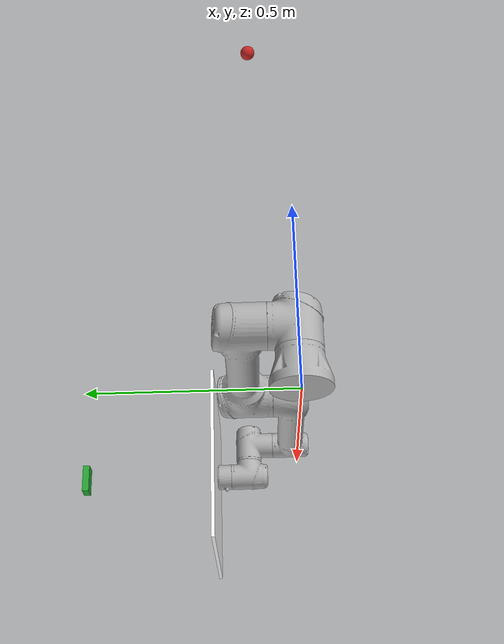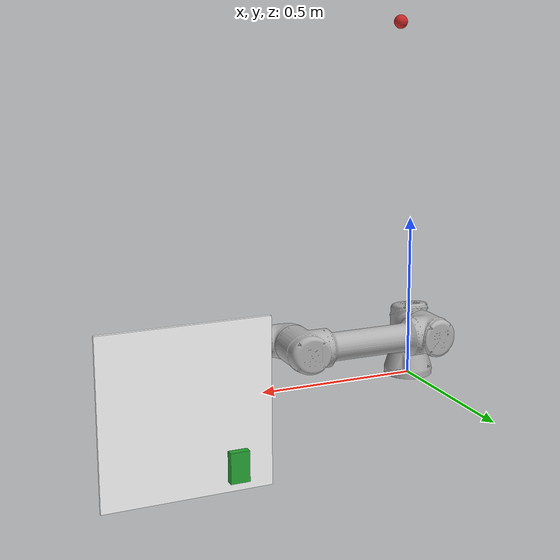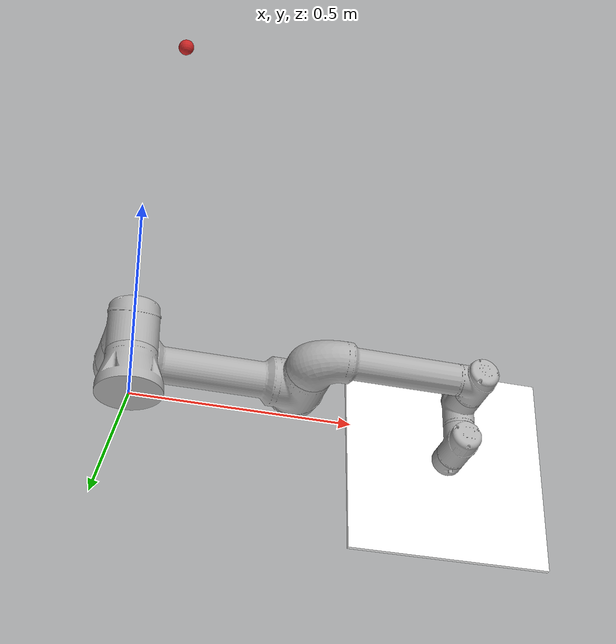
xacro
<?xml version="1.0"?>
<robot name="ur5e"
       xmlns:xacro="http://www.ros.org/wiki/xacro">
  <xacro:include filename="$(find ur_e_description)/urdf/ur5e_joint_limited_robot.urdf.xacro" />

  <xacro:property name="plate_length" value="0.5"/>
  <xacro:property name="plate_width" value="0.5"/>
  <xacro:property name="plate_thickness" value="0.01"/>
  <xacro:property name="ball_radius" value="0.02"/>

  <xacro:include filename="$(find praktikum_gazebo)/urdf/common.xacro" />
  <xacro:include filename="$(find praktikum_gazebo)/urdf/plate.urdf.xacro" />
  <xacro:plate parent="tool0" length="${plate_length}"
               width="${plate_width}" thickness="${plate_thickness}">
    <origin xyz="0 0 0" rpy="0 0 0" />
  </xacro:plate>

  <xacro:include filename="$(find praktikum_gazebo)/urdf/ball.urdf.xacro" />
  <xacro:ball parent="world" radius="${ball_radius}">
    <origin xyz="0.1 0.1 1.1" rpy="0 0 0" />
  </xacro:ball>

  <xacro:include filename="$(find praktikum_gazebo)/urdf/camera.urdf.xacro" />
  <xacro:camera_sensor parent="plate_link">
    <origin xyz="0 0 0.4" rpy="0 1.57 0" />
  </xacro:camera_sensor>
</robot>

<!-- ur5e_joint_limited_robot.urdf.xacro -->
<robot xmlns:xacro="http://ros.org/wiki/xacro"
       name="ur5e" >

  <xacro:arg name="transmission_hw_interface" default="hardware_interface/PositionJointInterface"/>

  <!-- common stuff -->
  <xacro:include filename="$(find ur_e_description)/urdf/common.gazebo.xacro" />

  <!-- ur5e -->
  <xacro:include filename="$(find ur_e_description)/urdf/ur5e.urdf.xacro" />

  <!-- arm -->
  <xacro:ur5e_robot prefix="" joint_limited="true"
    shoulder_pan_lower_limit="${-pi}" shoulder_pan_upper_limit="${pi}"
    shoulder_lift_lower_limit="${-pi}" shoulder_lift_upper_limit="${pi}"
    elbow_joint_lower_limit="${-pi}" elbow_joint_upper_limit="${pi}"
    wrist_1_lower_limit="${-pi}" wrist_1_upper_limit="${pi}"
    wrist_2_lower_limit="${-pi}" wrist_2_upper_limit="${pi}"
    wrist_3_lower_limit="${-pi}" wrist_3_upper_limit="${pi}"
    transmission_hw_interface="$(arg transmission_hw_interface)"
  />

  <link name="world" />

  <joint name="world_joint" type="fixed">
    <parent link="world" />
    <child link = "base_link" />
    <origin xyz="0.0 0.0 0.0" rpy="0.0 0.0 0.0" />
  </joint>

</robot>

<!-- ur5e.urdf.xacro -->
<robot xmlns:xacro="http://ros.org/wiki/xacro">

  <xacro:include filename="$(find ur_e_description)/urdf/ur.transmission.xacro" />
  <xacro:include filename="$(find ur_e_description)/urdf/ur.gazebo.xacro" />

  <xacro:macro name="cylinder_inertial" params="radius length mass *origin">
    <inertial>
      <mass value="${mass}" />
      <xacro:insert_block name="origin" />
      <inertia ixx="${0.0833333 * mass * (3 * radius * radius + length * length)}" ixy="0.0" ixz="0.0"
        iyy="${0.0833333 * mass * (3 * radius * radius + length * length)}" iyz="0.0"
        izz="${0.5 * mass * radius * radius}" />
    </inertial>
  </xacro:macro>

  <xacro:macro name="ur5e_robot" params="prefix joint_limited
    shoulder_pan_lower_limit:=${-pi}    shoulder_pan_upper_limit:=${pi}
    shoulder_lift_lower_limit:=${-pi}    shoulder_lift_upper_limit:=${pi}
    elbow_joint_lower_limit:=${-pi}    elbow_joint_upper_limit:=${pi}
    wrist_1_lower_limit:=${-pi}    wrist_1_upper_limit:=${pi}
    wrist_2_lower_limit:=${-pi}    wrist_2_upper_limit:=${pi}
    wrist_3_lower_limit:=${-pi}    wrist_3_upper_limit:=${pi}
    transmission_hw_interface:=hardware_interface/PositionJointInterface
    safety_limits:=false safety_pos_margin:=0.15
    safety_k_position:=20">

    <!-- Inertia parameters -->
    <xacro:property name="base_mass" value="4.0" />  <!-- This mass might be incorrect -->
    <xacro:property name="shoulder_mass" value="3.7000" />
    <xacro:property name="upper_arm_mass" value="8.3930" />
    <xacro:property name="forearm_mass" value="2.2750" />
    <xacro:property name="wrist_1_mass" value="1.2190" />
    <xacro:property name="wrist_2_mass" value="1.2190" />
    <xacro:property name="wrist_3_mass" value="0.1879" />

    <xacro:property name="shoulder_cog" value="0.0 0.00193 -0.02561" />
    <xacro:property name="upper_arm_cog" value="0.0 -0.024201 0.2125" />
    <xacro:property name="forearm_cog" value="0.0 0.0265 0.11993" />
    <xacro:property name="wrist_1_cog" value="0.0 0.110949 0.01634" />
    <xacro:property name="wrist_2_cog" value="0.0 0.0018 0.11099" />
    <xacro:property name="wrist_3_cog" value="0.0 0.001159 0.0" />

    <!-- Kinematic model -->
    <!-- Properties from urcontrol.conf -->
    <xacro:property name="d1" value="0.163" />
    <xacro:property name="a2" value="-0.425" />
    <xacro:property name="a3" value="-0.392" />
    <xacro:property name="d4" value="0.127" />
    <xacro:property name="d5" value="0.100" />
    <xacro:property name="d6" value="0.100" />

    <!-- Arbitrary offsets for shoulder/elbow joints -->
    <xacro:property name="shoulder_offset" value="0.138" />
    <xacro:property name="elbow_offset" value="-0.131" />

    <!-- link lengths used in model -->
    <xacro:property name="shoulder_height" value="${d1}" />
    <xacro:property name="upper_arm_length" value="${-a2}" />
    <xacro:property name="forearm_length" value="${-a3}" />
    <xacro:property name="wrist_1_length" value="${d4}" />
    <xacro:property name="wrist_2_length" value="${d5}" />
    <xacro:property name="wrist_3_length" value="${d6}" />
    <!--property name="shoulder_height" value="0.089159" /-->
    <!--property name="shoulder_offset" value="0.13585" /-->  <!-- shoulder_offset - elbow_offset + wrist_1_length = 0.10915 -->
    <!--property name="upper_arm_length" value="0.42500" /-->
    <!--property name="elbow_offset" value="0.1197" /-->       <!-- CAD measured -->
    <!--property name="forearm_length" value="0.39225" /-->
    <!--property name="wrist_1_length" value="0.093" /-->     <!-- CAD measured -->
    <!--property name="wrist_2_length" value="0.09465" /-->   <!-- In CAD this distance is 0.930, but in the spec it is 0.09465 -->
    <!--property name="wrist_3_length" value="0.0823" /-->

    <xacro:property name="shoulder_radius" value="0.060" />   <!-- manually measured -->
    <xacro:property name="upper_arm_radius" value="0.054" />  <!-- manually measured -->
    <xacro:property name="elbow_radius" value="0.060" />      <!-- manually measured -->
    <xacro:property name="forearm_radius" value="0.040" />    <!-- manually measured -->
    <xacro:property name="wrist_radius" value="0.045" />      <!-- manually measured -->

    <link name="${prefix}base_link" >
      <visual>
        <geometry>
          <mesh filename="package://ur_e_description/meshes/ur5e/visual/base.dae" />
        </geometry>
        <material name="LightGrey">
          <color rgba="0.7 0.7 0.7 1.0"/>
        </material>
      </visual>
      <collision>
        <geometry>
          <mesh filename="package://ur_e_description/meshes/ur5e/collision/base.stl" />
        </geometry>
      </collision>
      <xacro:cylinder_inertial radius="0.06" length="0.05" mass="${base_mass}">
        <origin xyz="0.0 0.0 0.0" rpy="0 0 0" />
      </xacro:cylinder_inertial>
    </link>

    <joint name="${prefix}shoulder_pan_joint" type="revolute">
      <parent link="${prefix}base_link" />
      <child link = "${prefix}shoulder_link" />
      <origin xyz="0.0 0.0 ${shoulder_height}" rpy="0.0 0.0 0.0" />
      <axis xyz="0 0 1" />
      <xacro:unless value="${joint_limited}">
        <limit lower="${-2.0 * pi}" upper="${2.0 * pi}" effort="150.0" velocity="3.14"/>
        <xacro:if value="${safety_limits}">
          <safety_controller soft_lower_limit="${-2.0 * pi + safety_pos_margin}" soft_upper_limit="${2.0 * pi - safety_pos_margin}" k_position="${safety_k_position}" k_velocity="0.0"/>
        </xacro:if>
      </xacro:unless>
      <xacro:if value="${joint_limited}">
        <limit lower="${shoulder_pan_lower_limit}" upper="${shoulder_pan_upper_limit}" effort="150.0" velocity="3.14"/>
        <xacro:if value="${safety_limits}">
          <safety_controller soft_lower_limit="${shoulder_pan_lower_limit + safety_pos_margin}" soft_upper_limit="${shoulder_pan_upper_limit - safety_pos_margin}" k_position="${safety_k_position}" k_velocity="0.0"/>
        </xacro:if>
      </xacro:if>
      <dynamics damping="0.0" friction="0.0"/>
    </joint>

    <link name="${prefix}shoulder_link">
      <visual>
        <geometry>
          <mesh filename="package://ur_e_description/meshes/ur5e/visual/shoulder.dae" />
        </geometry>
        <material name="LightGrey">
          <color rgba="0.7 0.7 0.7 1.0"/>
        </material>
      </visual>
      <collision>
        <geometry>
          <mesh filename="package://ur_e_description/meshes/ur5e/collision/shoulder.stl" />
        </geometry>
      </collision>
      <xacro:cylinder_inertial radius="0.06" length="0.15" mass="${shoulder_mass}">
        <origin xyz="0.0 0.0 0.0" rpy="0 0 0" />
      </xacro:cylinder_inertial>
    </link>

    <joint name="${prefix}shoulder_lift_joint" type="revolute">
      <parent link="${prefix}shoulder_link" />
      <child link = "${prefix}upper_arm_link" />
      <origin xyz="0.0 ${shoulder_offset} 0.0" rpy="0.0 ${pi / 2.0} 0.0" />
      <axis xyz="0 1 0" />
      <xacro:unless value="${joint_limited}">
        <limit lower="${-2.0 * pi}" upper="${2.0 * pi}" effort="150.0" velocity="3.14"/>
        <xacro:if value="${safety_limits}">
          <safety_controller soft_lower_limit="${-2.0 * pi + safety_pos_margin}" soft_upper_limit="${2.0 * pi - safety_pos_margin}" k_position="${safety_k_position}" k_velocity="0.0"/>
        </xacro:if>
      </xacro:unless>
      <xacro:if value="${joint_limited}">
        <limit lower="${shoulder_lift_lower_limit}" upper="${shoulder_lift_upper_limit}" effort="150.0" velocity="3.14"/>
        <xacro:if value="${safety_limits}">
          <safety_controller soft_lower_limit="${shoulder_lift_lower_limit + safety_pos_margin}" soft_upper_limit="${shoulder_lift_upper_limit - safety_pos_margin}" k_position="${safety_k_position}" k_velocity="0.0"/>
        </xacro:if>
      </xacro:if>
      <dynamics damping="0.0" friction="0.0"/>
    </joint>

    <link name="${prefix}upper_arm_link">
      <visual>
        <geometry>
          <mesh filename="package://ur_e_description/meshes/ur5e/visual/upperarm.dae" />
        </geometry>
        <material name="LightGrey">
          <color rgba="0.7 0.7 0.7 1.0"/>
        </material>
      </visual>
      <collision>
        <geometry>
          <mesh filename="package://ur_e_description/meshes/ur5e/collision/upperarm.stl" />
        </geometry>
      </collision>
      <xacro:cylinder_inertial radius="0.06" length="${upper_arm_length}" mass="${upper_arm_mass}">
        <origin xyz="0.0 0.0 ${upper_arm_length/2}" rpy="0 0 0" />
      </xacro:cylinder_inertial>
    </link>

    <joint name="${prefix}elbow_joint" type="revolute">
      <parent link="${prefix}upper_arm_link" />
      <child link = "${prefix}forearm_link" />
      <origin xyz="0.0 ${elbow_offset} ${upper_arm_length}" rpy="0.0 0.0 0.0" />
      <axis xyz="0 1 0" />
      <xacro:unless value="${joint_limited}">
        <limit lower="${-pi}" upper="${pi}" effort="150.0" velocity="3.14"/>
        <xacro:if value="${safety_limits}">
          <safety_controller soft_lower_limit="${-2.0 * pi + safety_pos_margin}" soft_upper_limit="${2.0 * pi - safety_pos_margin}" k_position="${safety_k_position}" k_velocity="0.0"/>
        </xacro:if>
      </xacro:unless>
      <xacro:if value="${joint_limited}">
        <limit lower="${elbow_joint_lower_limit}" upper="${elbow_joint_upper_limit}" effort="150.0" velocity="3.14"/>
        <xacro:if value="${safety_limits}">
          <safety_controller soft_lower_limit="${elbow_joint_lower_limit + safety_pos_margin}" soft_upper_limit="${elbow_joint_upper_limit - safety_pos_margin}" k_position="${safety_k_position}" k_velocity="0.0"/>
        </xacro:if>
      </xacro:if>
      <dynamics damping="0.0" friction="0.0"/>
    </joint>

    <link name="${prefix}forearm_link">
      <visual>
        <geometry>
          <mesh filename="package://ur_e_description/meshes/ur5e/visual/forearm.dae" />
        </geometry>
        <material name="LightGrey">
          <color rgba="0.7 0.7 0.7 1.0"/>
        </material>
      </visual>
      <collision>
        <geometry>
          <mesh filename="package://ur_e_description/meshes/ur5e/collision/forearm.stl" />
        </geometry>
      </collision>
      <xacro:cylinder_inertial radius="0.06" length="${forearm_length}" mass="${forearm_mass}">
        <origin xyz="0.0 0.0 ${forearm_length/2}" rpy="0 0 0" />
      </xacro:cylinder_inertial>
    </link>

    <joint name="${prefix}wrist_1_joint" type="revolute">
      <parent link="${prefix}forearm_link" />
      <child link = "${prefix}wrist_1_link" />
      <origin xyz="0.0 0.0 ${forearm_length}" rpy="0.0 ${pi / 2.0} 0.0" />
      <axis xyz="0 1 0" />
      <xacro:unless value="${joint_limited}">
        <limit lower="${-2.0 * pi}" upper="${2.0 * pi}" effort="28.0" velocity="6.28"/>
        <xacro:if value="${safety_limits}">
          <safety_controller soft_lower_limit="${-2.0 * pi + safety_pos_margin}" soft_upper_limit="${2.0 * pi - safety_pos_margin}" k_position="${safety_k_position}" k_velocity="0.0"/>
        </xacro:if>
      </xacro:unless>
      <xacro:if value="${joint_limited}">
        <limit lower="${wrist_1_lower_limit}" upper="${wrist_1_upper_limit}" effort="28.0" velocity="6.28"/>
        <xacro:if value="${safety_limits}">
          <safety_controller soft_lower_limit="${wrist_1_lower_limit + safety_pos_margin}" soft_upper_limit="${wrist_1_upper_limit - safety_pos_margin}" k_position="${safety_k_position}" k_velocity="0.0"/>
        </xacro:if>
      </xacro:if>
      <dynamics damping="0.0" friction="0.0"/>
    </joint>

    <link name="${prefix}wrist_1_link">
      <visual>
        <geometry>
          <mesh filename="package://ur_e_description/meshes/ur5e/visual/wrist1.dae" />
        </geometry>
        <material name="LightGrey">
          <color rgba="0.7 0.7 0.7 1.0"/>
        </material>
      </visual>
      <collision>
        <geometry>
          <mesh filename="package://ur_e_description/meshes/ur5e/collision/wrist1.stl" />
        </geometry>
      </collision>
      <xacro:cylinder_inertial radius="0.06" length="0.12" mass="${wrist_1_mass}">
        <origin xyz="0.0 ${wrist_1_length} 0.0" rpy="0 0 0" />
      </xacro:cylinder_inertial>
    </link>

    <joint name="${prefix}wrist_2_joint" type="revolute">
      <parent link="${prefix}wrist_1_link" />
      <child link = "${prefix}wrist_2_link" />
      <origin xyz="0.0 ${wrist_1_length} 0.0" rpy="0.0 0.0 0.0" />
      <axis xyz="0 0 1" />
      <xacro:unless value="${joint_limited}">
        <limit lower="${-2.0 * pi}" upper="${2.0 * pi}" effort="28.0" velocity="6.28"/>
        <xacro:if value="${safety_limits}">
          <safety_controller soft_lower_limit="${-2.0 * pi + safety_pos_margin}" soft_upper_limit="${2.0 * pi - safety_pos_margin}" k_position="${safety_k_position}" k_velocity="0.0"/>
        </xacro:if>
      </xacro:unless>
      <xacro:if value="${joint_limited}">
        <limit lower="${wrist_2_lower_limit}" upper="${wrist_2_upper_limit}" effort="28.0" velocity="6.28"/>
        <xacro:if value="${safety_limits}">
          <safety_controller soft_lower_limit="${wrist_2_lower_limit + safety_pos_margin}" soft_upper_limit="${wrist_2_upper_limit - safety_pos_margin}" k_position="${safety_k_position}" k_velocity="0.0"/>
        </xacro:if>
      </xacro:if>
      <dynamics damping="0.0" friction="0.0"/>
    </joint>

    <link name="${prefix}wrist_2_link">
      <visual>
        <geometry>
          <mesh filename="package://ur_e_description/meshes/ur5e/visual/wrist2.dae" />
        </geometry>
        <material name="LightGrey">
          <color rgba="0.7 0.7 0.7 1.0"/>
        </material>
      </visual>
      <collision>
        <geometry>
          <mesh filename="package://ur_e_description/meshes/ur5e/collision/wrist2.stl" />
        </geometry>
      </collision>
      <xacro:cylinder_inertial radius="0.06" length="0.12" mass="${wrist_2_mass}">
        <origin xyz="0.0 0.0 ${wrist_2_length}" rpy="0 0 0" />
      </xacro:cylinder_inertial>
    </link>

    <joint name="${prefix}wrist_3_joint" type="revolute">
      <parent link="${prefix}wrist_2_link" />
      <child link = "${prefix}wrist_3_link" />
      <origin xyz="0.0 0.0 ${wrist_2_length}" rpy="0.0 0.0 0.0" />
      <axis xyz="0 1 0" />
      <xacro:unless value="${joint_limited}">
        <limit lower="${-2.0 * pi}" upper="${2.0 * pi}" effort="28.0" velocity="6.28"/>
        <xacro:if value="${safety_limits}">
          <safety_controller soft_lower_limit="${-2.0 * pi + safety_pos_margin}" soft_upper_limit="${2.0 * pi - safety_pos_margin}" k_position="${safety_k_position}" k_velocity="0.0"/>
        </xacro:if>
      </xacro:unless>
      <xacro:if value="${joint_limited}">
        <limit lower="${wrist_3_lower_limit}" upper="${wrist_3_upper_limit}" effort="28.0" velocity="6.28"/>
        <xacro:if value="${safety_limits}">
          <safety_controller soft_lower_limit="${wrist_3_lower_limit + safety_pos_margin}" soft_upper_limit="${wrist_3_upper_limit - safety_pos_margin}" k_position="${safety_k_position}" k_velocity="0.0"/>
        </xacro:if>
      </xacro:if>
      <dynamics damping="0.0" friction="0.0"/>
    </joint>

    <link name="${prefix}wrist_3_link">
      <visual>
        <geometry>
          <mesh filename="package://ur_e_description/meshes/ur5e/visual/wrist3.dae" />
        </geometry>
        <material name="LightGrey">
          <color rgba="0.7 0.7 0.7 1.0"/>
        </material>
      </visual>
      <collision>
        <geometry>
          <mesh filename="package://ur_e_description/meshes/ur5e/collision/wrist3.stl" />
        </geometry>
      </collision>
      <xacro:cylinder_inertial radius="0.0375" length="0.0458" mass="${wrist_3_mass}">
        <origin xyz="0.0 ${wrist_3_length - 0.0458/2} 0.0" rpy="${pi/2} 0 0" />
      </xacro:cylinder_inertial>
    </link>

    <joint name="${prefix}ee_fixed_joint" type="fixed">
      <parent link="${prefix}wrist_3_link" />
      <child link = "${prefix}ee_link" />
      <origin xyz="0.0 ${wrist_3_length} 0.0" rpy="0.0 0.0 ${pi/2.0}" />
    </joint>

    <link name="${prefix}ee_link">
      <collision>
        <geometry>
          <box size="0.01 0.01 0.01"/>
        </geometry>
        <origin rpy="0 0 0" xyz="-0.01 0 0"/>
      </collision>
    </link>

    <xacro:ur_arm_transmission prefix="${prefix}" />
    <xacro:ur_arm_gazebo prefix="${prefix}" />

    <!-- ROS base_link to UR 'Base' Coordinates transform -->
    <link name="${prefix}base"/>
    <joint name="${prefix}base_link-base_fixed_joint" type="fixed">
      <!-- NOTE: this rotation is only needed as long as base_link itself is
                 not corrected wrt the real robot (ie: rotated over 180
                 degrees)
      -->
      <origin xyz="0 0 0" rpy="0 0 ${-pi}"/>
      <parent link="${prefix}base_link"/>
      <child link="${prefix}base"/>
    </joint>

    <!-- Frame coincident with all-zeros TCP on UR controller -->
    <link name="${prefix}tool0"/>
    <joint name="${prefix}wrist_3_link-tool0_fixed_joint" type="fixed">
      <origin xyz="0 ${wrist_3_length} 0" rpy="${pi/-2.0} 0 0"/>
      <parent link="${prefix}wrist_3_link"/>
      <child link="${prefix}tool0"/>
    </joint>

  </xacro:macro>
</robot>

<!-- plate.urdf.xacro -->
<robot xmlns:xacro="http://www.ros.org/wiki/xacro">

  <xacro:macro name="plate" params="parent length width thickness *origin">

    <link name="plate_link">
      <visual>
        <geometry>
          <box size="${length} ${width} ${thickness}"/>
        </geometry>
        <origin xyz="0 0 0" rpy="0 0 0"/>
        <material name="white">
          <color rgba="1.0 1.0 1.0 1.0"/>
        </material>
      </visual>
      <collision>
        <geometry>
          <box size="${length} ${width} ${thickness}"/>
        </geometry>
        <origin xyz="0 0 0" rpy="0 0 0"/>
      </collision>
      <xacro:default_inertial mass="0.1"/>
    </link>

    <joint name="plate_joint" type="fixed">
      <parent link="${parent}" />
      <child link = "plate_link" />
      <xacro:insert_block name="origin" />
    </joint>

    <gazebo reference="plate_link">
      <material>Gazebo/White</material>
      <selfCollide>True</selfCollide>
    </gazebo>

  </xacro:macro>
</robot>

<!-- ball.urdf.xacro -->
<robot xmlns:xacro="http://www.ros.org/wiki/xacro">

  <xacro:macro name="ball" params="parent radius *origin">

    <link name="ball_link">
      <visual>
        <origin xyz="0 0 0" rpy="0 0 0" />
        <geometry>
          <sphere radius="${radius}"/>
        </geometry>
      </visual>
      <collision>
        <origin xyz="0 0 0" rpy="0 0 0" />
        <geometry>
          <sphere radius="${radius}"/>
        </geometry>
      </collision>
      <xacro:default_inertial mass="0.1"/>
    </link>

    <joint name="ball_joint" type="floating">
      <parent link="${parent}" />
      <child link = "ball_link" />
      <xacro:insert_block name="origin" />
    </joint>

    <gazebo reference="ball_link">
      <mu1>10</mu1>
      <mu2>10</mu2>
      <material>Gazebo/Red</material>
      <turnGravityOff>false</turnGravityOff>
    </gazebo>

  </xacro:macro>
</robot>

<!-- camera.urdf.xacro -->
<robot xmlns:xacro="http://www.ros.org/wiki/xacro" name="camera">

  <xacro:property name="pi" value="3.1415926535897931"/>

  <xacro:macro name="camera_sensor" params="parent *origin">
    <joint name="camera_sensor_joint" type="fixed">
      <axis xyz="0 1 0" />
      <xacro:insert_block name="origin" />
      <parent link="${parent}"/>
      <child link="camera_link"/>
    </joint>

    <link name="camera_link">
      <collision>
        <origin xyz="0 0 0" rpy="0 0 0"/>
        <geometry>
            <box size="0.02 0.08 0.05"/>
        </geometry>
      </collision>
      <visual>
        <origin xyz="0 0 0" rpy="0 0 0"/>
        <geometry>
            <box size="0.02 0.08 0.05"/>
        </geometry>
        <material name="Gazebo/Green"/>
      </visual>
      <inertial>
        <mass value="0.0001" />
        <origin xyz="0 0 0" rpy="0 0 ${pi}"/>
        <inertia ixx="0.0000001" ixy="0" ixz="0" iyy="0.0000001" iyz="0" izz="0.0000001" />
      </inertial>
    </link>

    <gazebo reference="camera_link">
      <sensor type="camera" name="camera">
        <update_rate>30.0</update_rate>
        <camera name="head">
          <horizontal_fov>1.3962634</horizontal_fov>
          <image>
              <width>800</width>
              <height>600</height>
              <format>R8G8B8</format>
          </image>
          <clip>
              <near>0.02</near>
              <far>300</far>
          </clip>
          <noise>
              <type>gaussian</type>
              <mean>0.0</mean>
              <stddev>0.007</stddev>
          </noise>
        </camera>
        <plugin name="camera_controller" filename="libgazebo_ros_camera.so">
          <alwaysOn>true</alwaysOn>
          <updateRate>0.0</updateRate>
          <cameraName>camera</cameraName>
          <imageTopicName>image_raw</imageTopicName>
          <cameraInfoTopicName>camera_info</cameraInfoTopicName>
          <frameName>camera_link</frameName>
          <hackBaseline>0.07</hackBaseline>
          <distortionK1>0.0</distortionK1>
          <distortionK2>0.0</distortionK2>
          <distortionK3>0.0</distortionK3>
          <distortionT1>0.0</distortionT1>
          <distortionT2>0.0</distortionT2>
        </plugin>
      </sensor>
    </gazebo>

  </xacro:macro>

</robot>
